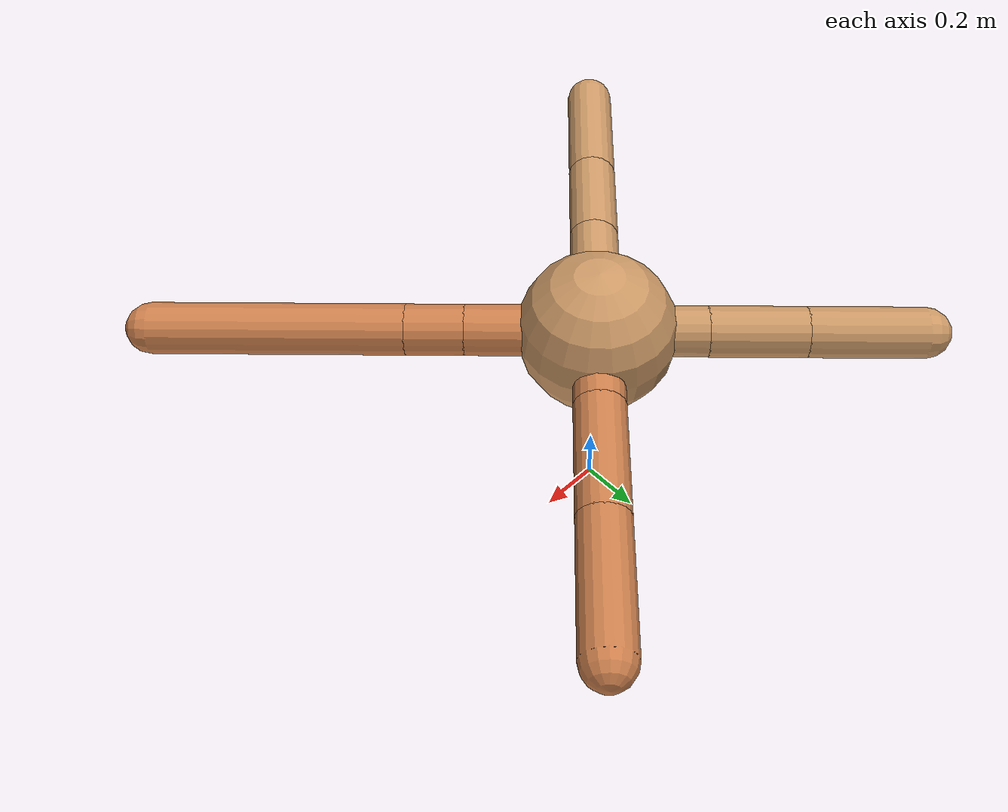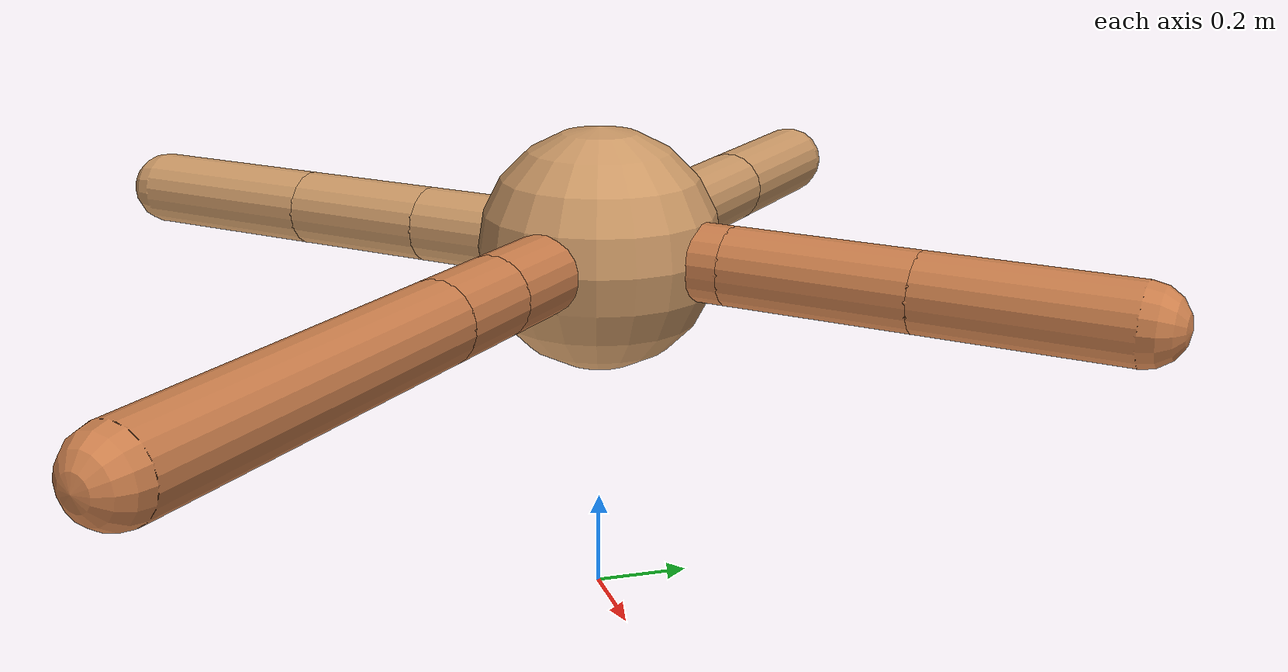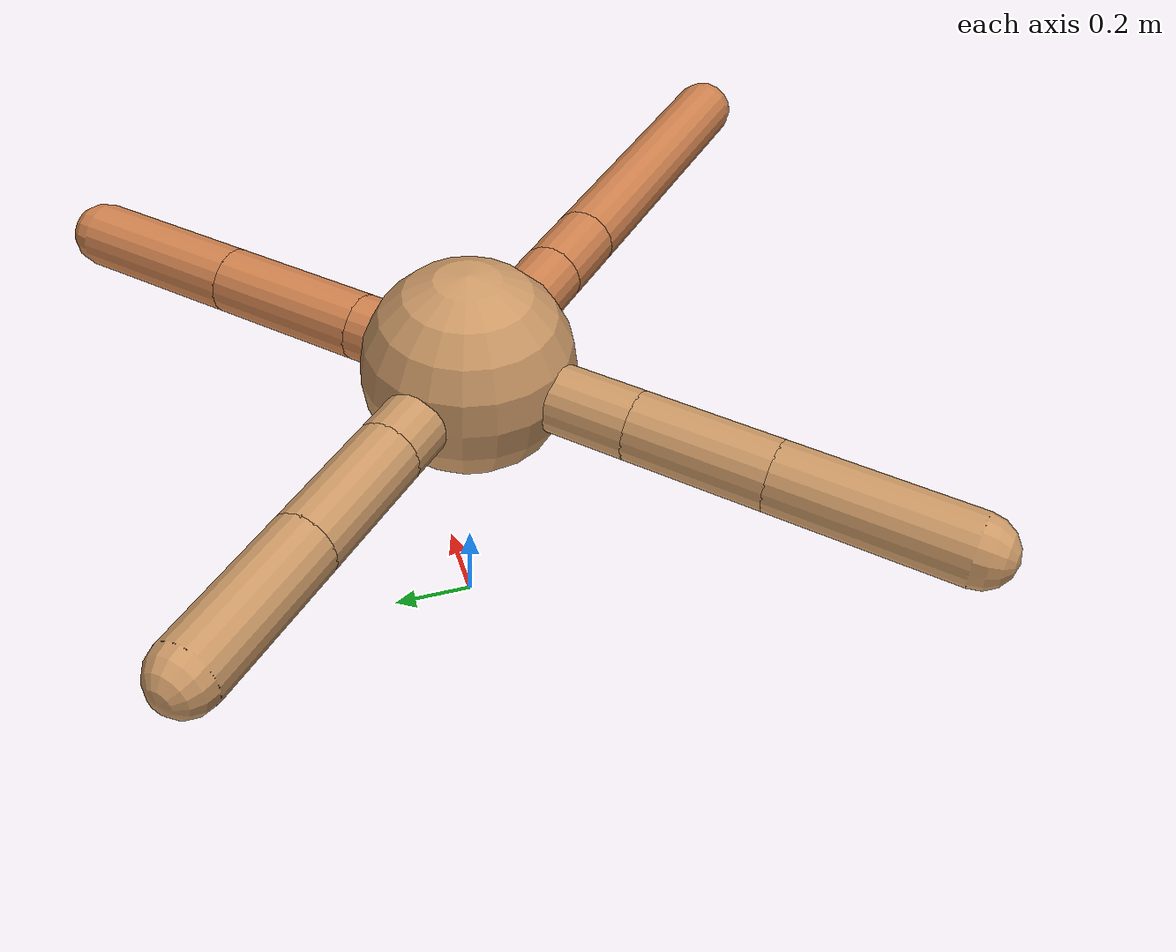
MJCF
<mujoco model="ant">
  <compiler angle="degree" coordinate="local" inertiafromgeom="true" />
  <option integrator="RK4" timestep="0.01" />
  <custom>
    <numeric data="0.0 0.0 0.55 1.0 0.0 0.0 0.0 0.0 1.0 0.0 -1.0 0.0 -1.0 0.0 1.0" name="init_qpos" />
  </custom>
  <default>
    <joint armature="1" damping="1" limited="true" />
    <geom conaffinity="0" condim="3" density="5.0" friction="1.5 0.1 0.1" margin="0.01" rgba="0.8 0.6 0.4 1" />
  </default>
  <worldbody>
    <body name="torso" pos="0 0 0.75">
      <geom name="torso_geom" pos="0 0 0" size="0.25" type="sphere" />

      <body name="front_left_leg" pos="0 0 0">
        <geom fromto="0.0 0.0 0.0 0.20781568194282465 0.20781568194282465 0.0" name="aux_1_geom" size="0.08" type="capsule" rgba=".8 .5 .3 1" />
        <body name="aux_1" pos="0.20781568194282465 0.20781568194282465 0.0">
          <joint axis="0 0 1" name="hip_1" pos="0.0 0.0 0.0" range="-40 40" type="hinge" />
          <geom fromto="0.0 0.0 0.0 0.26853595951341985 0.26853595951341985 0.0" name="left_leg_geom" size="0.08" type="capsule" rgba=".8 .5 .3 1" />
          <body pos="0.26853595951341985 0.26853595951341985 0.0" name="front_left_foot">
            <joint axis="-1 1 0" name="ankle_1" pos="0.0 0.0 0.0" range="30 100" type="hinge" />
            <geom fromto="0.0 0.0 0.0 0.28941581158631646 0.28941581158631646 0.0" name="left_ankle_geom" size="0.08" type="capsule" rgba=".8 .5 .3 1" />
          </body>
        </body>
      </body>
      <body name="front_right_leg" pos="0 0 0">
        <geom fromto="0.0 0.0 0.0 -0.24085118464837374 0.24085118464837374 0.0" name="aux_2_geom" size="0.08" type="capsule" />
        <body name="aux_2" pos="-0.24085118464837374 0.24085118464837374 0.0">
          <joint axis="0 0 1" name="hip_2" pos="0.0 0.0 0.0" range="-40 40" type="hinge" />
          <geom fromto="0.0 0.0 0.0 -0.2150739965915292 0.2150739965915292 0.0" name="right_leg_geom" size="0.08" type="capsule" />
          <body pos="-0.2150739965915292 0.2150739965915292 0.0" name="front_right_foot">
            <joint axis="1 1 0" name="ankle_2" pos="0.0 0.0 0.0" range="-100 -30" type="hinge" />
            <geom fromto="0.0 0.0 0.0 -0.2584584180772484 0.2584584180772484 0.0" name="right_ankle_geom" size="0.08" type="capsule" />
          </body>
        </body>
      </body>
      <body name="left_back_leg" pos="0 0 0">
        <geom fromto="0.0 0.0 0.0 -0.2951251796212552 -0.2951251796212552 0.0" name="aux_3_geom" size="0.08" type="capsule" />
        <body name="aux_3" pos="-0.2951251796212552 -0.2951251796212552 0.0">
          <joint axis="0 0 1" name="hip_3" pos="0.0 0.0 0.0" range="-40 40" type="hinge" />
          <geom fromto="0.0 0.0 0.0 -0.22476090587119202 -0.22476090587119202 0.0" name="back_leg_geom" size="0.08" type="capsule" />
          <body pos="-0.22476090587119202 -0.22476090587119202 0.0" name="left_back_foot">
            <joint axis="-1 1 0" name="ankle_3" pos="0.0 0.0 0.0" range="-100 -30" type="hinge" />
            <geom fromto="0.0 0.0 0.0 -0.29993127024501315 -0.29993127024501315 0.0" name="third_ankle_geom" size="0.08" type="capsule" />
          </body>
        </body>
      </body>
      <body name="right_back_leg" pos="0 0 0">
        <geom fromto="0.0 0.0 0.0 0.289023739532563 -0.289023739532563 0.0" name="aux_4_geom" size="0.08" type="capsule" rgba=".8 .5 .3 1" />
        <body name="aux_4" pos="0.289023739532563 -0.289023739532563 0.0">
          <joint axis="0 0 1" name="hip_4" pos="0.0 0.0 0.0" range="-40 40" type="hinge" />
          <geom fromto="0.0 0.0 0.0 0.12921532550388914 -0.12921532550388914 0.0" name="rightback_leg_geom" size="0.08" type="capsule" rgba=".8 .5 .3 1" />
          <body pos="0.12921532550388914 -0.12921532550388914 0.0" name="right_back_foot">
            <joint axis="1 1 0" name="ankle_4" pos="0.0 0.0 0.0" range="30 100" type="hinge" />
            <geom fromto="0.0 0.0 0.0 0.5549617049777281 -0.5549617049777281 0.0" name="fourth_ankle_geom" size="0.08" type="capsule" rgba=".8 .5 .3 1" />
          </body>
        </body>
      </body>
    </body>
  </worldbody>
  <actuator>
    <motor ctrllimited="true" ctrlrange="-1.0 1.0" joint="hip_4" gear="150" />
    <motor ctrllimited="true" ctrlrange="-1.0 1.0" joint="ankle_4" gear="150" />
    <motor ctrllimited="true" ctrlrange="-1.0 1.0" joint="hip_1" gear="150" />
    <motor ctrllimited="true" ctrlrange="-1.0 1.0" joint="ankle_1" gear="150" />
    <motor ctrllimited="true" ctrlrange="-1.0 1.0" joint="hip_2" gear="150" />
    <motor ctrllimited="true" ctrlrange="-1.0 1.0" joint="ankle_2" gear="150" />
    <motor ctrllimited="true" ctrlrange="-1.0 1.0" joint="hip_3" gear="150" />
    <motor ctrllimited="true" ctrlrange="-1.0 1.0" joint="ankle_3" gear="150" />
  </actuator>
</mujoco>
